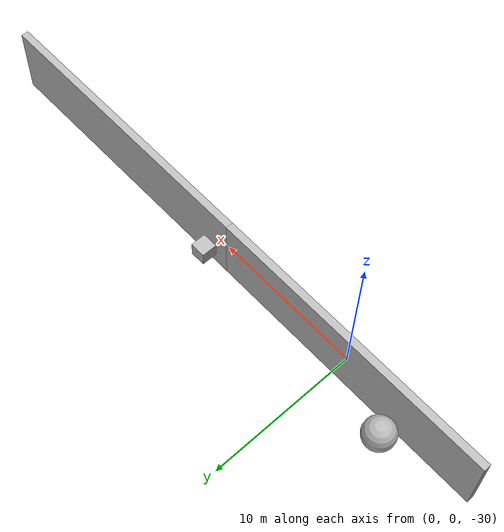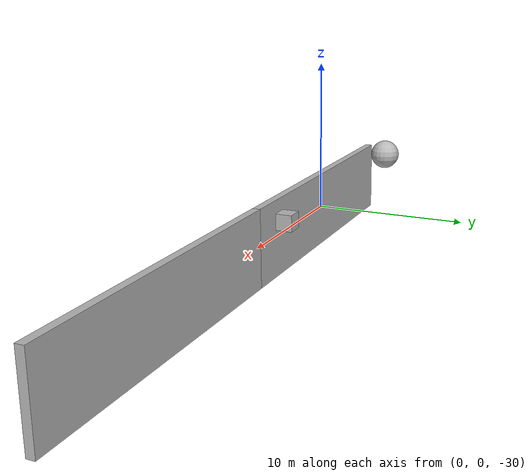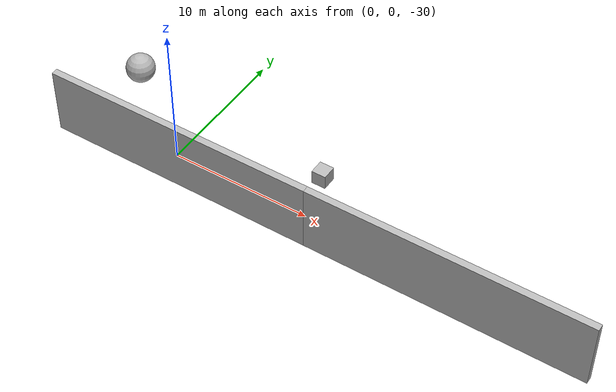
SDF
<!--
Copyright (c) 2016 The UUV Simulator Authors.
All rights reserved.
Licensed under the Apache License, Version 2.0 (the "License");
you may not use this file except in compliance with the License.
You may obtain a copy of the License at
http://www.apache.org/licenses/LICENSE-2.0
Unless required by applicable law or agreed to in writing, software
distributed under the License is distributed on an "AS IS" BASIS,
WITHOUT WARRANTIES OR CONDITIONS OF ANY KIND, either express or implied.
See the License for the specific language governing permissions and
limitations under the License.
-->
<sdf version="1.4">
 <world name="cluttered_underwater_tunnel">
  <physics name="default_physics" default="true" type="ode">
   <max_step_size>0.01</max_step_size>
   <real_time_factor>1</real_time_factor>
   <real_time_update_rate>100</real_time_update_rate>
   <ode><solver><type>quick</type><iters>50</iters><sor>1.2</sor></solver></ode>
  </physics>
  <scene>
   <ambient>0.01 0.01 0.01 1.0</ambient>
   <sky><clouds><speed>12</speed></clouds></sky>
   <shadows>1</shadows>
  </scene>
  <spherical_coordinates>
   <latitude_deg>56.71897669633431</latitude_deg>
   <longitude_deg>3.515625</longitude_deg>
  </spherical_coordinates>
  <light type="directional" name="sun1">
   <pose>50 0 150 0 0 0</pose>
   <diffuse>1 1 1 1</diffuse>
   <specular>.1 .1 .1 1</specular>
   <direction>0.3 0.3 -1</direction>
   <cast_shadows>false</cast_shadows>
  </light>
  <light type="directional" name="sun_diffuse">
   <pose>-50 0 -150 0 0 0</pose>
   <diffuse>0.6 0.6 0.6 1</diffuse>
   <specular>0 0 0 1</specular>
   <direction>-0.3 -0.3 -1</direction>
   <cast_shadows>false</cast_shadows>
  </light>
  <model name="tunnel_segment_1">
   <static>true</static>
   <pose>0 0 -30 0 0 0</pose>
   <link name="link">
    <collision name="collision"><geometry><box><size>20 0.5 5</size></box></geometry></collision>
    <visual name="visual"><geometry><box><size>20 0.5 5</size></box></geometry></visual>
   </link>
  </model>
  <model name="tunnel_segment_2">
   <static>true</static>
   <pose>20 0 -30 0 0 0</pose>
   <link name="link">
    <collision name="collision"><geometry><box><size>20 0.5 5</size></box></geometry></collision>
    <visual name="visual"><geometry><box><size>20 0.5 5</size></box></geometry></visual>
   </link>
  </model>
  <model name="cube_obstacle_3">
   <static>true</static>
   <pose>10 2 -28 0 0 1.57</pose>
   <link name="link"><visual name="visual"><geometry><box><size>1 1 1</size></box></geometry></visual></link>
  </model>
  <model name="sphere_obstacle_2">
   <static>true</static>
   <pose>-5 3 -27 0 0 0</pose>
   <link name="link">
    <visual name="visual"><geometry><sphere><radius>1</radius></sphere></geometry></visual>
   </link>
  </model>
  <plugin name="underwater_current_plugin" filename="libuuv_underwater_current_ros_plugin.so">
   <namespace>hydrodynamics</namespace>
   <constant_current>
    <topic>current_velocity</topic>
    <velocity><mean>0</mean><min>0</min><max>5</max><mu>0.0</mu><noiseAmp>0.0</noiseAmp></velocity>
    <horizontal_angle>
     <mean>0</mean>
     <min>-3.141592653589793238</min>
     <max>3.141592653589793238</max>
     <mu>0.0</mu>
     <noiseAmp>0.0</noiseAmp>
    </horizontal_angle>
    <vertical_angle>
     <mean>0</mean>
     <min>-3.141592653589793238</min>
     <max>3.141592653589793238</max>
     <mu>0.0</mu>
     <noiseAmp>0.0</noiseAmp>
    </vertical_angle>
   </constant_current>
  </plugin>
  <plugin name="sc_interface" filename="libuuv_sc_ros_interface_plugin.so"/>
 </world>
</sdf>
